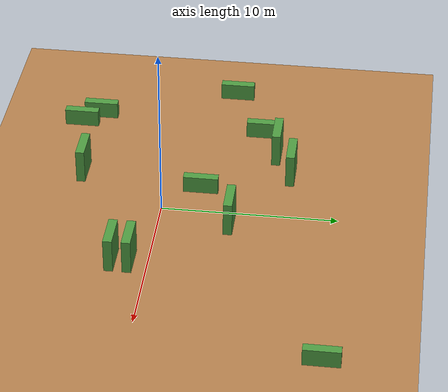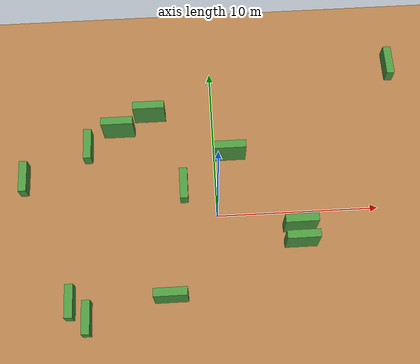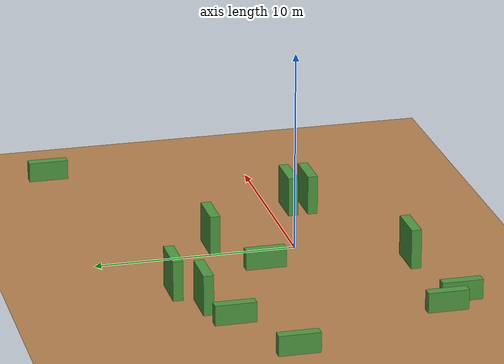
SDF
<sdf version="1.6">
 <world name="default">
  <include><uri>model://sun</uri></include>
  <model name="ground_plane">
   <static>1</static>
   <link name="link">
    <collision name="collision">
     <geometry><plane><normal>0 0 1</normal><size>15 15</size></plane></geometry>
     <surface><friction><ode><mu>100</mu><mu2>50</mu2></ode></friction></surface>
    </collision>
    <visual name="visual">
     <cast_shadows>0</cast_shadows>
     <geometry><plane><normal>0 0 1</normal><size>40 40</size></plane></geometry>
     <material>
      <script><uri>file://media/materials/scripts/gazebo.material</uri><name>Gazebo/WoodFloor</name></script>
     </material>
    </visual>
    <velocity_decay><linear>0</linear><angular>0</angular></velocity_decay>
   </link>
  </model>
  <model name="obstacles">
   <static>1</static>
   <link name="haie_0">
    <pose>-3 -5 1.0 0 0 0</pose>
    <visual name="visual">
     <geometry><box><size>2.0 0.5 2.0</size></box></geometry>
     <material>
      <ambient>0.4 0.3 0.2 1</ambient>
      <diffuse>0.3 0.2 0.1 1</diffuse>
      <specular>0.1 0.1 0.1 1</specular>
      <emissive>0 0 0 0</emissive>
      <script><uri>file://media/materials/scripts/gazebo.material</uri><name>Gazebo/Grass</name></script>
     </material>
    </visual>
    <collision name="collision"><geometry><box><size>2.0 0.5 1.0</size></box></geometry></collision>
   </link>
   <link name="haie_1">
    <pose>1 4 1.0 0 0 0</pose>
    <visual name="visual">
     <geometry><box><size>2.0 0.5 2.0</size></box></geometry>
     <material>
      <ambient>0.4 0.3 0.2 1</ambient>
      <diffuse>0.3 0.2 0.1 1</diffuse>
      <specular>0.1 0.1 0.1 1</specular>
      <emissive>0 0 0 0</emissive>
      <script><uri>file://media/materials/scripts/gazebo.material</uri><name>Gazebo/Grass</name></script>
     </material>
    </visual>
    <collision name="collision"><geometry><box><size>2.0 0.5 1.0</size></box></geometry></collision>
   </link>
   <link name="haie_2">
    <pose>-4 7 1.0 0 0 0</pose>
    <visual name="visual">
     <geometry><box><size>2.0 0.5 2.0</size></box></geometry>
     <material>
      <ambient>0.4 0.3 0.2 1</ambient>
      <diffuse>0.3 0.2 0.1 1</diffuse>
      <specular>0.1 0.1 0.1 1</specular>
      <emissive>0 0 0 0</emissive>
      <script><uri>file://media/materials/scripts/gazebo.material</uri><name>Gazebo/Grass</name></script>
     </material>
    </visual>
    <collision name="collision"><geometry><box><size>2.0 0.5 1.0</size></box></geometry></collision>
   </link>
   <link name="haie_3">
    <pose>-6 6 1.0 0 0 0</pose>
    <visual name="visual">
     <geometry><box><size>2.0 0.5 2.0</size></box></geometry>
     <material>
      <ambient>0.4 0.3 0.2 1</ambient>
      <diffuse>0.3 0.2 0.1 1</diffuse>
      <specular>0.1 0.1 0.1 1</specular>
      <emissive>0 0 0 0</emissive>
      <script><uri>file://media/materials/scripts/gazebo.material</uri><name>Gazebo/Grass</name></script>
     </material>
    </visual>
    <collision name="collision"><geometry><box><size>2.0 0.5 1.0</size></box></geometry></collision>
   </link>
   <link name="haie_4">
    <pose>5 -2 1.0 0 0 0</pose>
    <visual name="visual">
     <geometry><box><size>2.0 0.5 2.0</size></box></geometry>
     <material>
      <ambient>0.4 0.3 0.2 1</ambient>
      <diffuse>0.3 0.2 0.1 1</diffuse>
      <specular>0.1 0.1 0.1 1</specular>
      <emissive>0 0 0 0</emissive>
      <script><uri>file://media/materials/scripts/gazebo.material</uri><name>Gazebo/Grass</name></script>
     </material>
    </visual>
    <collision name="collision"><geometry><box><size>2.0 0.5 1.0</size></box></geometry></collision>
   </link>
   <link name="haie_5">
    <pose>5 -1 1.0 0 0 0</pose>
    <visual name="visual">
     <geometry><box><size>2.0 0.5 2.0</size></box></geometry>
     <material>
      <ambient>0.4 0.3 0.2 1</ambient>
      <diffuse>0.3 0.2 0.1 1</diffuse>
      <specular>0.1 0.1 0.1 1</specular>
      <emissive>0 0 0 0</emissive>
      <script><uri>file://media/materials/scripts/gazebo.material</uri><name>Gazebo/Grass</name></script>
     </material>
    </visual>
    <collision name="collision"><geometry><box><size>2.0 0.5 1.0</size></box></geometry></collision>
   </link>
   <link name="haie90%_0">
    <pose>-12 3 0.5 0 0 1.5708</pose>
    <visual name="visual">
     <geometry><box><size>2.0 0.5 1.0</size></box></geometry>
     <material>
      <ambient>0.4 0.3 0.2 1</ambient>
      <diffuse>0.3 0.2 0.1 1</diffuse>
      <specular>0.1 0.1 0.1 1</specular>
      <emissive>0 0 0 0</emissive>
      <script><uri>file://media/materials/scripts/gazebo.material</uri><name>Gazebo/Grass</name></script>
     </material>
    </visual>
    <collision name="collision"><geometry><box><size>2.0 0.5 1.0</size></box></geometry></collision>
   </link>
   <link name="haie90%_1">
    <pose>12 10 0.5 0 0 1.5708</pose>
    <visual name="visual">
     <geometry><box><size>2.0 0.5 1.0</size></box></geometry>
     <material>
      <ambient>0.4 0.3 0.2 1</ambient>
      <diffuse>0.3 0.2 0.1 1</diffuse>
      <specular>0.1 0.1 0.1 1</specular>
      <emissive>0 0 0 0</emissive>
      <script><uri>file://media/materials/scripts/gazebo.material</uri><name>Gazebo/Grass</name></script>
     </material>
    </visual>
    <collision name="collision"><geometry><box><size>2.0 0.5 1.0</size></box></geometry></collision>
   </link>
   <link name="haie90%_2">
    <pose>-8 -6 0.5 0 0 1.5708</pose>
    <visual name="visual">
     <geometry><box><size>2.0 0.5 1.0</size></box></geometry>
     <material>
      <ambient>0.4 0.3 0.2 1</ambient>
      <diffuse>0.3 0.2 0.1 1</diffuse>
      <specular>0.1 0.1 0.1 1</specular>
      <emissive>0 0 0 0</emissive>
      <script><uri>file://media/materials/scripts/gazebo.material</uri><name>Gazebo/Grass</name></script>
     </material>
    </visual>
    <collision name="collision"><geometry><box><size>2.0 0.5 1.0</size></box></geometry></collision>
   </link>
   <link name="haie90%_3">
    <pose>-2 2 0.5 0 0 1.5708</pose>
    <visual name="visual">
     <geometry><box><size>2.0 0.5 1.0</size></box></geometry>
     <material>
      <ambient>0.4 0.3 0.2 1</ambient>
      <diffuse>0.3 0.2 0.1 1</diffuse>
      <specular>0.1 0.1 0.1 1</specular>
      <emissive>0 0 0 0</emissive>
      <script><uri>file://media/materials/scripts/gazebo.material</uri><name>Gazebo/Grass</name></script>
     </material>
    </visual>
    <collision name="collision"><geometry><box><size>2.0 0.5 1.0</size></box></geometry></collision>
   </link>
   <link name="haie90%_4">
    <pose>-8 5 0.5 0 0 1.5708</pose>
    <visual name="visual">
     <geometry><box><size>2.0 0.5 1.0</size></box></geometry>
     <material>
      <ambient>0.4 0.3 0.2 1</ambient>
      <diffuse>0.3 0.2 0.1 1</diffuse>
      <specular>0.1 0.1 0.1 1</specular>
      <emissive>0 0 0 0</emissive>
      <script><uri>file://media/materials/scripts/gazebo.material</uri><name>Gazebo/Grass</name></script>
     </material>
    </visual>
    <collision name="collision"><geometry><box><size>2.0 0.5 1.0</size></box></geometry></collision>
   </link>
   <link name="haie90%_5">
    <pose>-9 -5 0.5 0 0 1.5708</pose>
    <visual name="visual">
     <geometry><box><size>2.0 0.5 1.0</size></box></geometry>
     <material>
      <ambient>0.4 0.3 0.2 1</ambient>
      <diffuse>0.3 0.2 0.1 1</diffuse>
      <specular>0.1 0.1 0.1 1</specular>
      <emissive>0 0 0 0</emissive>
      <script><uri>file://media/materials/scripts/gazebo.material</uri><name>Gazebo/Grass</name></script>
     </material>
    </visual>
    <collision name="collision"><geometry><box><size>2.0 0.5 1.0</size></box></geometry></collision>
   </link>
  </model>
 </world>
</sdf>
